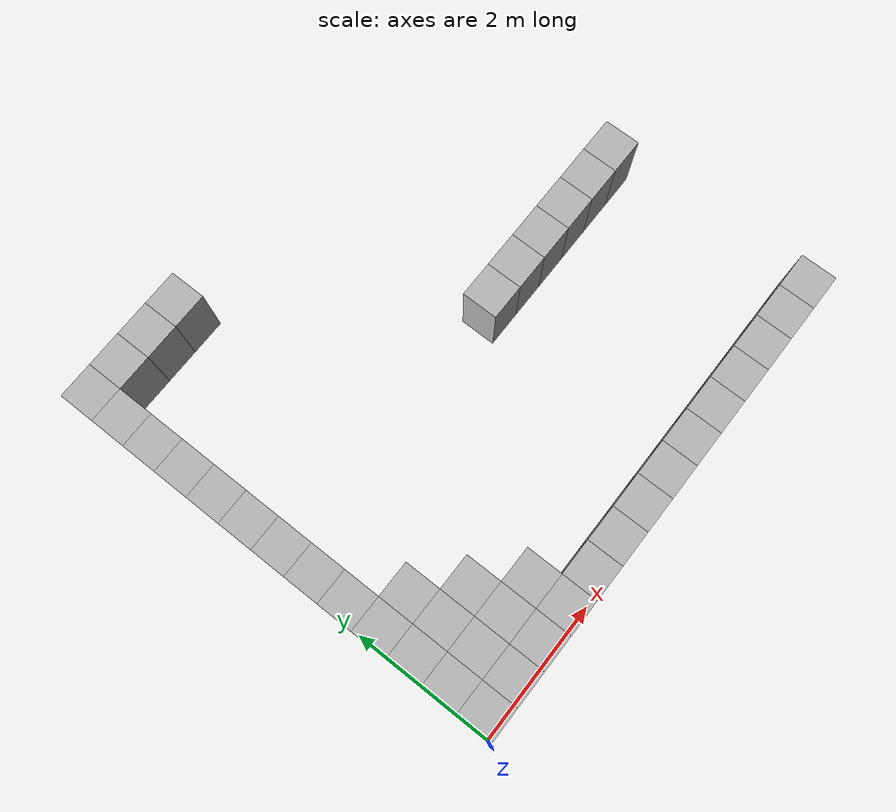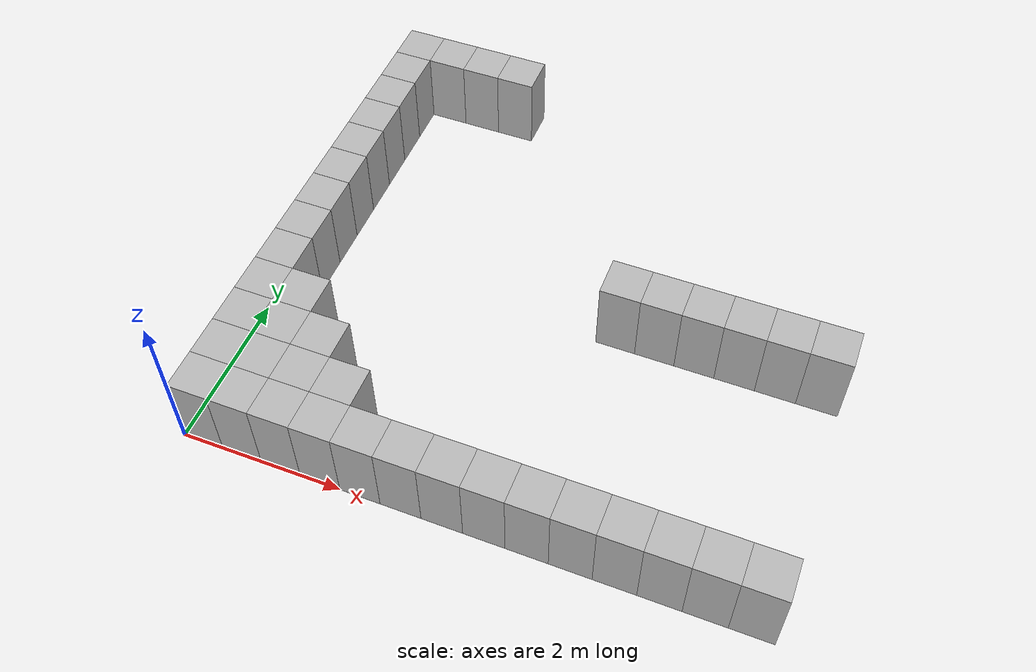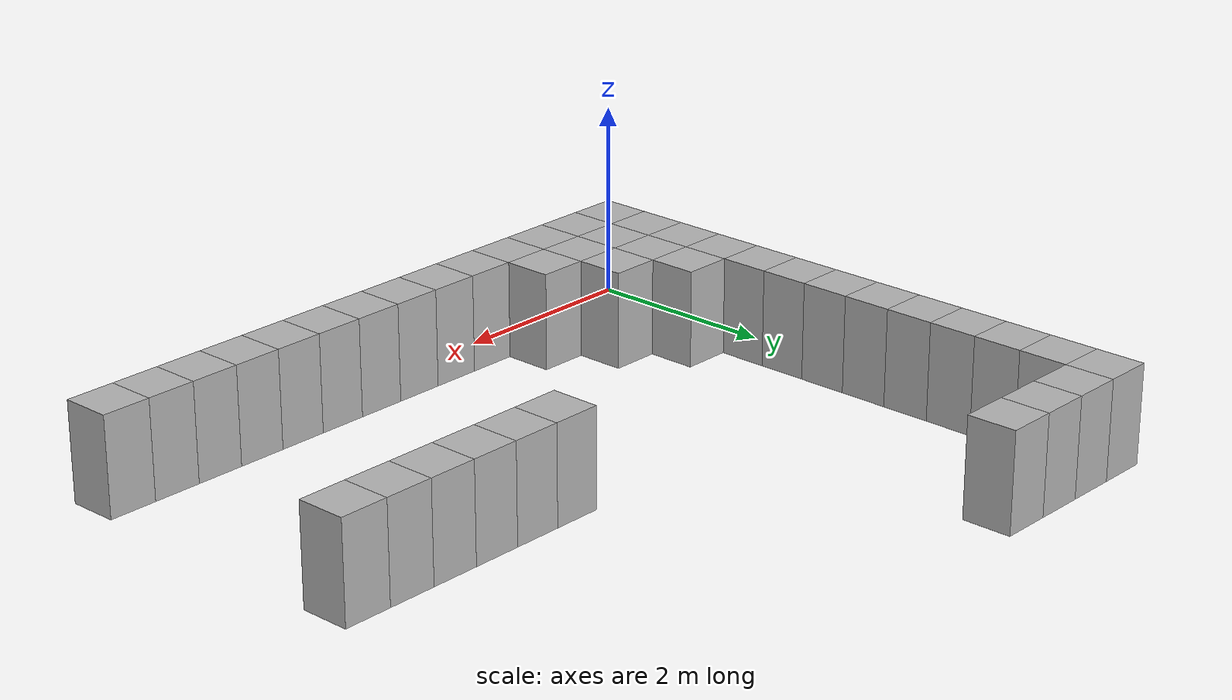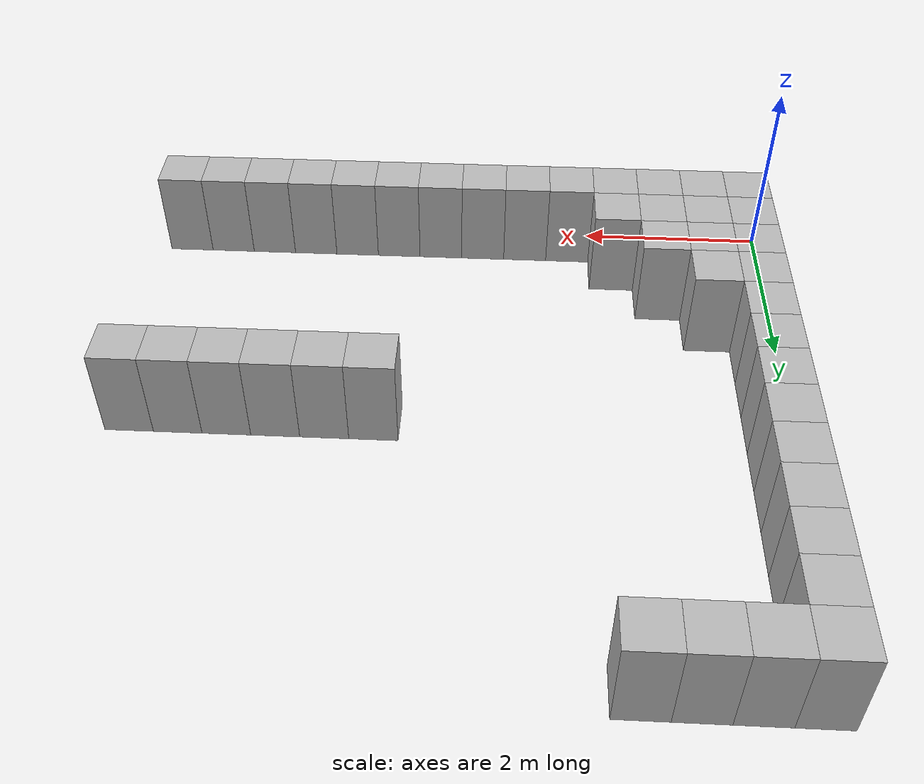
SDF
<sdf version="1.4">
 <world name="default">
  <model name="box_0_0">
   <pose>0.25 0.25 0.5 0 0 0</pose>
   <static>true</static>
   <link name="link">
    <collision name="collision"><geometry><box><size>0.5 0.5 1.0</size></box></geometry></collision>
    <visual name="visual"><geometry><box><size>0.5 0.5 1.0</size></box></geometry></visual>
   </link>
  </model>
  <model name="box_0_1">
   <pose>0.25 0.75 0.5 0 0 0</pose>
   <static>true</static>
   <link name="link">
    <collision name="collision"><geometry><box><size>0.5 0.5 1.0</size></box></geometry></collision>
    <visual name="visual"><geometry><box><size>0.5 0.5 1.0</size></box></geometry></visual>
   </link>
  </model>
  <model name="box_0_2">
   <pose>0.25 1.25 0.5 0 0 0</pose>
   <static>true</static>
   <link name="link">
    <collision name="collision"><geometry><box><size>0.5 0.5 1.0</size></box></geometry></collision>
    <visual name="visual"><geometry><box><size>0.5 0.5 1.0</size></box></geometry></visual>
   </link>
  </model>
  <model name="box_0_3">
   <pose>0.25 1.75 0.5 0 0 0</pose>
   <static>true</static>
   <link name="link">
    <collision name="collision"><geometry><box><size>0.5 0.5 1.0</size></box></geometry></collision>
    <visual name="visual"><geometry><box><size>0.5 0.5 1.0</size></box></geometry></visual>
   </link>
  </model>
  <model name="box_0_4">
   <pose>0.25 2.25 0.5 0 0 0</pose>
   <static>true</static>
   <link name="link">
    <collision name="collision"><geometry><box><size>0.5 0.5 1.0</size></box></geometry></collision>
    <visual name="visual"><geometry><box><size>0.5 0.5 1.0</size></box></geometry></visual>
   </link>
  </model>
  <model name="box_0_5">
   <pose>0.25 2.75 0.5 0 0 0</pose>
   <static>true</static>
   <link name="link">
    <collision name="collision"><geometry><box><size>0.5 0.5 1.0</size></box></geometry></collision>
    <visual name="visual"><geometry><box><size>0.5 0.5 1.0</size></box></geometry></visual>
   </link>
  </model>
  <model name="box_0_6">
   <pose>0.25 3.25 0.5 0 0 0</pose>
   <static>true</static>
   <link name="link">
    <collision name="collision"><geometry><box><size>0.5 0.5 1.0</size></box></geometry></collision>
    <visual name="visual"><geometry><box><size>0.5 0.5 1.0</size></box></geometry></visual>
   </link>
  </model>
  <model name="box_0_7">
   <pose>0.25 3.75 0.5 0 0 0</pose>
   <static>true</static>
   <link name="link">
    <collision name="collision"><geometry><box><size>0.5 0.5 1.0</size></box></geometry></collision>
    <visual name="visual"><geometry><box><size>0.5 0.5 1.0</size></box></geometry></visual>
   </link>
  </model>
  <model name="box_0_8">
   <pose>0.25 4.25 0.5 0 0 0</pose>
   <static>true</static>
   <link name="link">
    <collision name="collision"><geometry><box><size>0.5 0.5 1.0</size></box></geometry></collision>
    <visual name="visual"><geometry><box><size>0.5 0.5 1.0</size></box></geometry></visual>
   </link>
  </model>
  <model name="box_0_9">
   <pose>0.25 4.75 0.5 0 0 0</pose>
   <static>true</static>
   <link name="link">
    <collision name="collision"><geometry><box><size>0.5 0.5 1.0</size></box></geometry></collision>
    <visual name="visual"><geometry><box><size>0.5 0.5 1.0</size></box></geometry></visual>
   </link>
  </model>
  <model name="box_0_10">
   <pose>0.25 5.25 0.5 0 0 0</pose>
   <static>true</static>
   <link name="link">
    <collision name="collision"><geometry><box><size>0.5 0.5 1.0</size></box></geometry></collision>
    <visual name="visual"><geometry><box><size>0.5 0.5 1.0</size></box></geometry></visual>
   </link>
  </model>
  <model name="box_0_11">
   <pose>0.25 5.75 0.5 0 0 0</pose>
   <static>true</static>
   <link name="link">
    <collision name="collision"><geometry><box><size>0.5 0.5 1.0</size></box></geometry></collision>
    <visual name="visual"><geometry><box><size>0.5 0.5 1.0</size></box></geometry></visual>
   </link>
  </model>
  <model name="box_0_12">
   <pose>0.25 6.25 0.5 0 0 0</pose>
   <static>true</static>
   <link name="link">
    <collision name="collision"><geometry><box><size>0.5 0.5 1.0</size></box></geometry></collision>
    <visual name="visual"><geometry><box><size>0.5 0.5 1.0</size></box></geometry></visual>
   </link>
  </model>
  <model name="box_1_0">
   <pose>0.75 0.25 0.5 0 0 0</pose>
   <static>true</static>
   <link name="link">
    <collision name="collision"><geometry><box><size>0.5 0.5 1.0</size></box></geometry></collision>
    <visual name="visual"><geometry><box><size>0.5 0.5 1.0</size></box></geometry></visual>
   </link>
  </model>
  <model name="box_1_1">
   <pose>0.75 0.75 0.5 0 0 0</pose>
   <static>true</static>
   <link name="link">
    <collision name="collision"><geometry><box><size>0.5 0.5 1.0</size></box></geometry></collision>
    <visual name="visual"><geometry><box><size>0.5 0.5 1.0</size></box></geometry></visual>
   </link>
  </model>
  <model name="box_1_2">
   <pose>0.75 1.25 0.5 0 0 0</pose>
   <static>true</static>
   <link name="link">
    <collision name="collision"><geometry><box><size>0.5 0.5 1.0</size></box></geometry></collision>
    <visual name="visual"><geometry><box><size>0.5 0.5 1.0</size></box></geometry></visual>
   </link>
  </model>
  <model name="box_1_3">
   <pose>0.75 1.75 0.5 0 0 0</pose>
   <static>true</static>
   <link name="link">
    <collision name="collision"><geometry><box><size>0.5 0.5 1.0</size></box></geometry></collision>
    <visual name="visual"><geometry><box><size>0.5 0.5 1.0</size></box></geometry></visual>
   </link>
  </model>
  <model name="box_1_12">
   <pose>0.75 6.25 0.5 0 0 0</pose>
   <static>true</static>
   <link name="link">
    <collision name="collision"><geometry><box><size>0.5 0.5 1.0</size></box></geometry></collision>
    <visual name="visual"><geometry><box><size>0.5 0.5 1.0</size></box></geometry></visual>
   </link>
  </model>
  <model name="box_2_0">
   <pose>1.25 0.25 0.5 0 0 0</pose>
   <static>true</static>
   <link name="link">
    <collision name="collision"><geometry><box><size>0.5 0.5 1.0</size></box></geometry></collision>
    <visual name="visual"><geometry><box><size>0.5 0.5 1.0</size></box></geometry></visual>
   </link>
  </model>
  <model name="box_2_1">
   <pose>1.25 0.75 0.5 0 0 0</pose>
   <static>true</static>
   <link name="link">
    <collision name="collision"><geometry><box><size>0.5 0.5 1.0</size></box></geometry></collision>
    <visual name="visual"><geometry><box><size>0.5 0.5 1.0</size></box></geometry></visual>
   </link>
  </model>
  <model name="box_2_2">
   <pose>1.25 1.25 0.5 0 0 0</pose>
   <static>true</static>
   <link name="link">
    <collision name="collision"><geometry><box><size>0.5 0.5 1.0</size></box></geometry></collision>
    <visual name="visual"><geometry><box><size>0.5 0.5 1.0</size></box></geometry></visual>
   </link>
  </model>
  <model name="box_2_12">
   <pose>1.25 6.25 0.5 0 0 0</pose>
   <static>true</static>
   <link name="link">
    <collision name="collision"><geometry><box><size>0.5 0.5 1.0</size></box></geometry></collision>
    <visual name="visual"><geometry><box><size>0.5 0.5 1.0</size></box></geometry></visual>
   </link>
  </model>
  <model name="box_3_0">
   <pose>1.75 0.25 0.5 0 0 0</pose>
   <static>true</static>
   <link name="link">
    <collision name="collision"><geometry><box><size>0.5 0.5 1.0</size></box></geometry></collision>
    <visual name="visual"><geometry><box><size>0.5 0.5 1.0</size></box></geometry></visual>
   </link>
  </model>
  <model name="box_3_1">
   <pose>1.75 0.75 0.5 0 0 0</pose>
   <static>true</static>
   <link name="link">
    <collision name="collision"><geometry><box><size>0.5 0.5 1.0</size></box></geometry></collision>
    <visual name="visual"><geometry><box><size>0.5 0.5 1.0</size></box></geometry></visual>
   </link>
  </model>
  <model name="box_3_12">
   <pose>1.75 6.25 0.5 0 0 0</pose>
   <static>true</static>
   <link name="link">
    <collision name="collision"><geometry><box><size>0.5 0.5 1.0</size></box></geometry></collision>
    <visual name="visual"><geometry><box><size>0.5 0.5 1.0</size></box></geometry></visual>
   </link>
  </model>
  <model name="box_4_0">
   <pose>2.25 0.25 0.5 0 0 0</pose>
   <static>true</static>
   <link name="link">
    <collision name="collision"><geometry><box><size>0.5 0.5 1.0</size></box></geometry></collision>
    <visual name="visual"><geometry><box><size>0.5 0.5 1.0</size></box></geometry></visual>
   </link>
  </model>
  <model name="box_5_0">
   <pose>2.75 0.25 0.5 0 0 0</pose>
   <static>true</static>
   <link name="link">
    <collision name="collision"><geometry><box><size>0.5 0.5 1.0</size></box></geometry></collision>
    <visual name="visual"><geometry><box><size>0.5 0.5 1.0</size></box></geometry></visual>
   </link>
  </model>
  <model name="box_6_0">
   <pose>3.25 0.25 0.5 0 0 0</pose>
   <static>true</static>
   <link name="link">
    <collision name="collision"><geometry><box><size>0.5 0.5 1.0</size></box></geometry></collision>
    <visual name="visual"><geometry><box><size>0.5 0.5 1.0</size></box></geometry></visual>
   </link>
  </model>
  <model name="box_7_0">
   <pose>3.75 0.25 0.5 0 0 0</pose>
   <static>true</static>
   <link name="link">
    <collision name="collision"><geometry><box><size>0.5 0.5 1.0</size></box></geometry></collision>
    <visual name="visual"><geometry><box><size>0.5 0.5 1.0</size></box></geometry></visual>
   </link>
  </model>
  <model name="box_8_0">
   <pose>4.25 0.25 0.5 0 0 0</pose>
   <static>true</static>
   <link name="link">
    <collision name="collision"><geometry><box><size>0.5 0.5 1.0</size></box></geometry></collision>
    <visual name="visual"><geometry><box><size>0.5 0.5 1.0</size></box></geometry></visual>
   </link>
  </model>
  <model name="box_8_6">
   <pose>4.25 3.25 0.5 0 0 0</pose>
   <static>true</static>
   <link name="link">
    <collision name="collision"><geometry><box><size>0.5 0.5 1.0</size></box></geometry></collision>
    <visual name="visual"><geometry><box><size>0.5 0.5 1.0</size></box></geometry></visual>
   </link>
  </model>
  <model name="box_9_0">
   <pose>4.75 0.25 0.5 0 0 0</pose>
   <static>true</static>
   <link name="link">
    <collision name="collision"><geometry><box><size>0.5 0.5 1.0</size></box></geometry></collision>
    <visual name="visual"><geometry><box><size>0.5 0.5 1.0</size></box></geometry></visual>
   </link>
  </model>
  <model name="box_9_6">
   <pose>4.75 3.25 0.5 0 0 0</pose>
   <static>true</static>
   <link name="link">
    <collision name="collision"><geometry><box><size>0.5 0.5 1.0</size></box></geometry></collision>
    <visual name="visual"><geometry><box><size>0.5 0.5 1.0</size></box></geometry></visual>
   </link>
  </model>
  <model name="box_10_0">
   <pose>5.25 0.25 0.5 0 0 0</pose>
   <static>true</static>
   <link name="link">
    <collision name="collision"><geometry><box><size>0.5 0.5 1.0</size></box></geometry></collision>
    <visual name="visual"><geometry><box><size>0.5 0.5 1.0</size></box></geometry></visual>
   </link>
  </model>
  <model name="box_10_6">
   <pose>5.25 3.25 0.5 0 0 0</pose>
   <static>true</static>
   <link name="link">
    <collision name="collision"><geometry><box><size>0.5 0.5 1.0</size></box></geometry></collision>
    <visual name="visual"><geometry><box><size>0.5 0.5 1.0</size></box></geometry></visual>
   </link>
  </model>
  <model name="box_11_0">
   <pose>5.75 0.25 0.5 0 0 0</pose>
   <static>true</static>
   <link name="link">
    <collision name="collision"><geometry><box><size>0.5 0.5 1.0</size></box></geometry></collision>
    <visual name="visual"><geometry><box><size>0.5 0.5 1.0</size></box></geometry></visual>
   </link>
  </model>
  <model name="box_11_6">
   <pose>5.75 3.25 0.5 0 0 0</pose>
   <static>true</static>
   <link name="link">
    <collision name="collision"><geometry><box><size>0.5 0.5 1.0</size></box></geometry></collision>
    <visual name="visual"><geometry><box><size>0.5 0.5 1.0</size></box></geometry></visual>
   </link>
  </model>
  <model name="box_12_0">
   <pose>6.25 0.25 0.5 0 0 0</pose>
   <static>true</static>
   <link name="link">
    <collision name="collision"><geometry><box><size>0.5 0.5 1.0</size></box></geometry></collision>
    <visual name="visual"><geometry><box><size>0.5 0.5 1.0</size></box></geometry></visual>
   </link>
  </model>
  <model name="box_12_6">
   <pose>6.25 3.25 0.5 0 0 0</pose>
   <static>true</static>
   <link name="link">
    <collision name="collision"><geometry><box><size>0.5 0.5 1.0</size></box></geometry></collision>
    <visual name="visual"><geometry><box><size>0.5 0.5 1.0</size></box></geometry></visual>
   </link>
  </model>
  <model name="box_13_0">
   <pose>6.75 0.25 0.5 0 0 0</pose>
   <static>true</static>
   <link name="link">
    <collision name="collision"><geometry><box><size>0.5 0.5 1.0</size></box></geometry></collision>
    <visual name="visual"><geometry><box><size>0.5 0.5 1.0</size></box></geometry></visual>
   </link>
  </model>
  <model name="box_13_6">
   <pose>6.75 3.25 0.5 0 0 0</pose>
   <static>true</static>
   <link name="link">
    <collision name="collision"><geometry><box><size>0.5 0.5 1.0</size></box></geometry></collision>
    <visual name="visual"><geometry><box><size>0.5 0.5 1.0</size></box></geometry></visual>
   </link>
  </model>
 </world>
</sdf>
